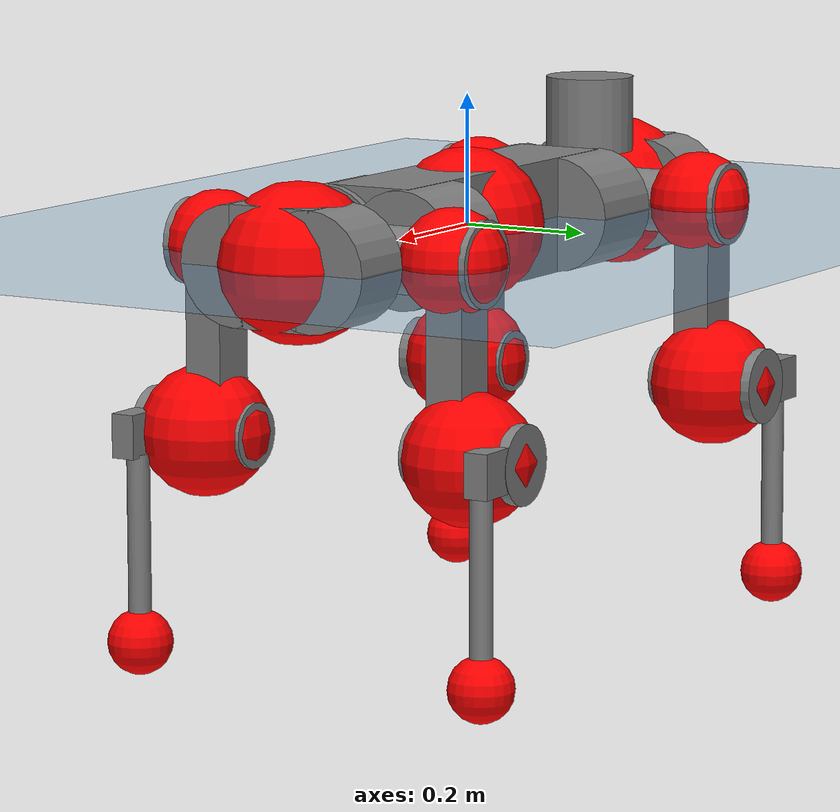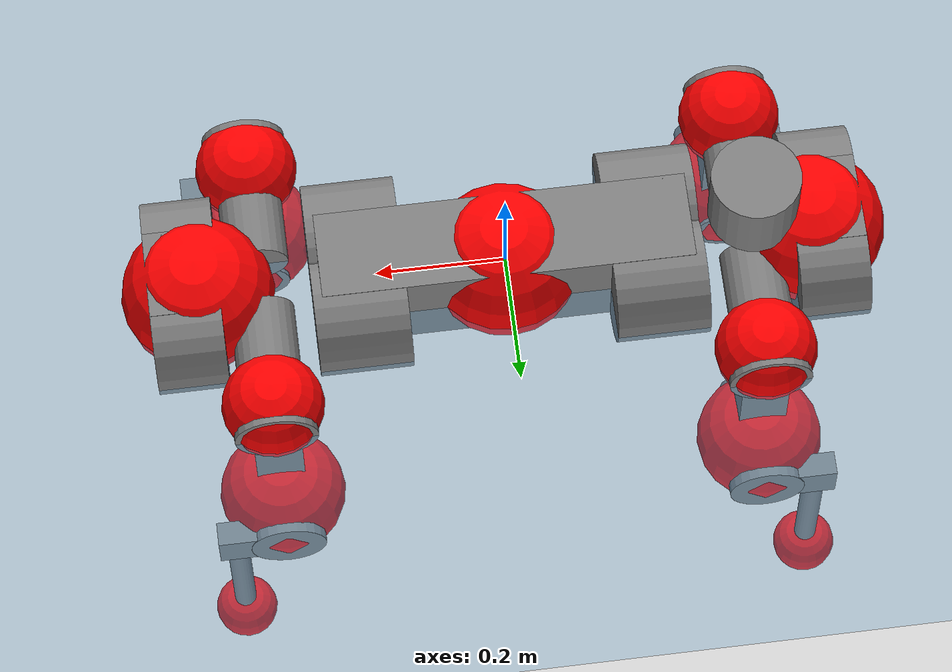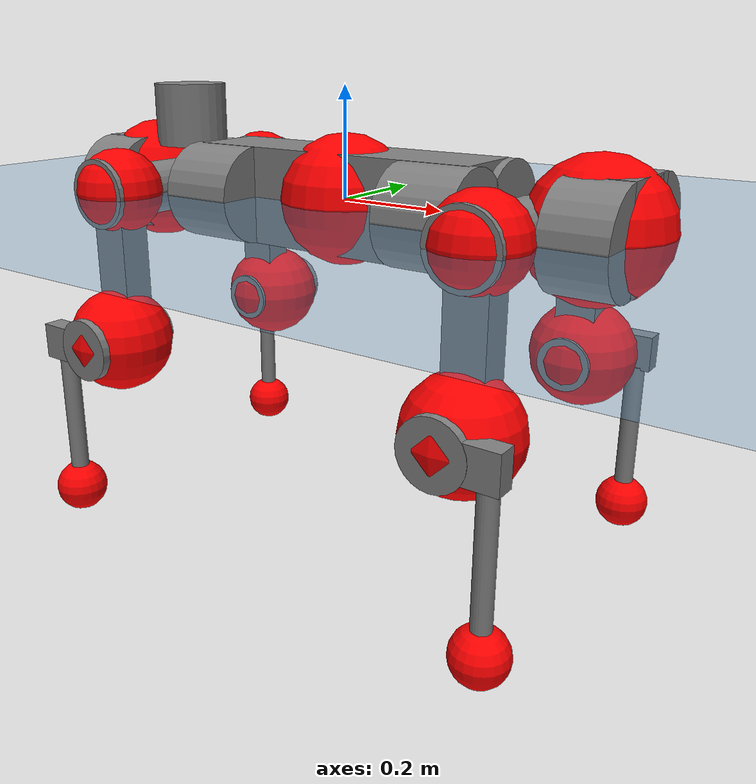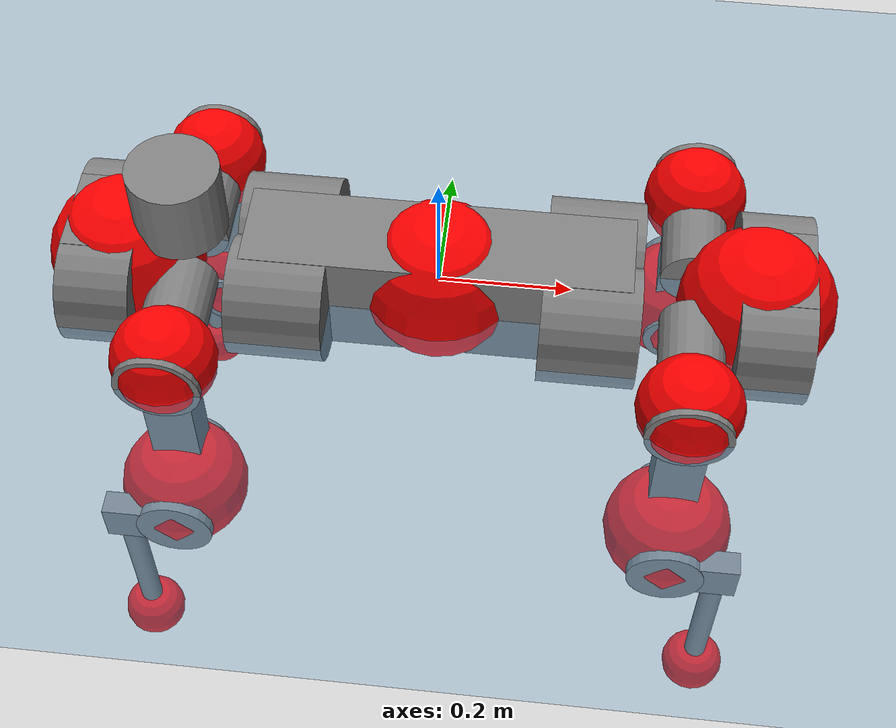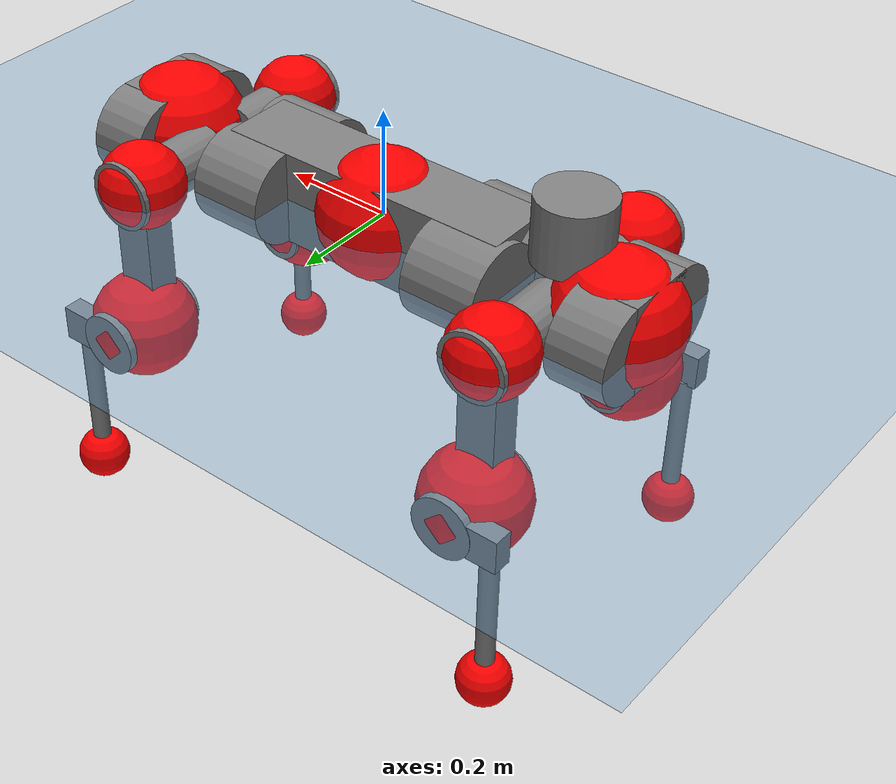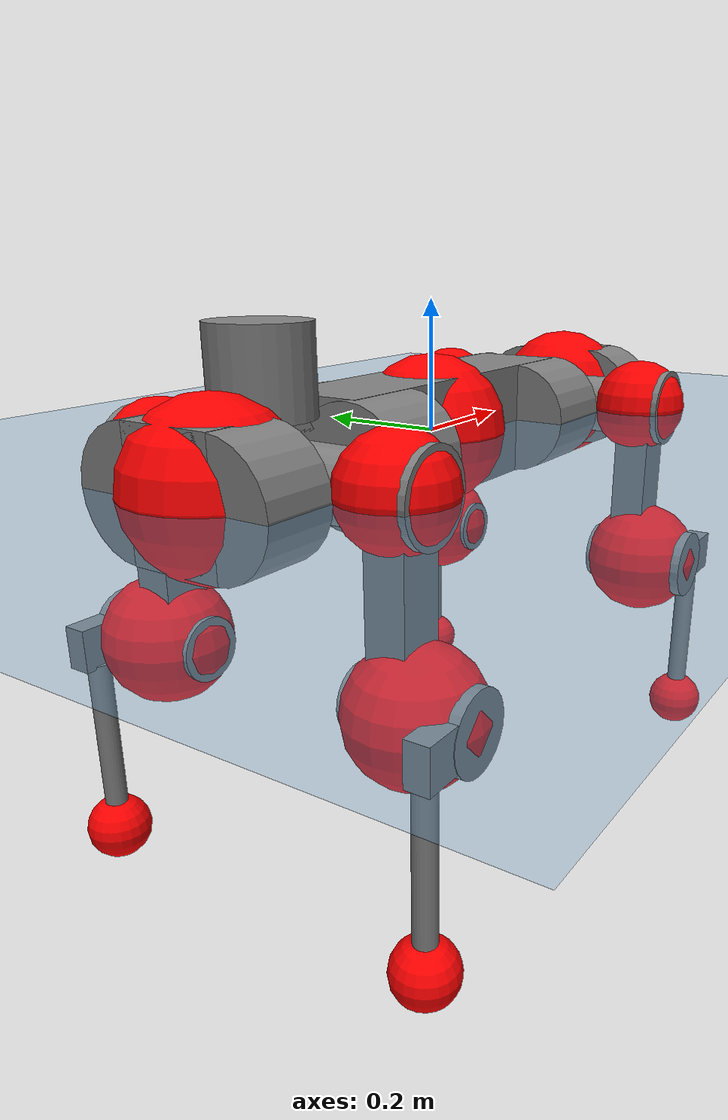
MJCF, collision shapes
<mujoco model="anymal_c">
  <compiler angle="radian" assetdir="assets" balanceinertia="true" inertiafromgeom="false"/>

  <option timestep="0.005" density="1.2" viscosity="2e-05"/>

  <size nkey="1"/>

  <visual>
    <quality shadowsize="8192"/>
    <map shadowclip="0.5"/>
  </visual>

  <default>
    <default class="/">
      <material specular="0" shininess="0.25"/>
      <geom contype="0" conaffinity="0" group="1" solref="-1000 -80"/>
      <site size="0.01 0.005 0.005" group="5"/>
      <general forcelimited="true" forcerange="-80 80" biastype="affine" gainprm="80" biasprm="0 -80 -2"/>
      <default class="anymal_c">
        <joint armature="0.01" damping="0.01" frictionloss="0.1"/>
        <default class="visual">
          <geom type="mesh" group="2"/>
          <default class="visual_zflip"/>
        </default>
        <default class="collision">
          <geom type="cylinder" group="3"/>
          <default class="foot">
            <geom size="0.03 0 0" type="sphere" condim="6" priority="1" friction="0.8 0.02 0.01" solimp="0.015 1 0.03"/>
          </default>
        </default>
      </default>
      <default class="reward_collision_sphere">
        <geom group="5" rgba="1 0 0 1"/>
      </default>
    </default>
  </default>

  <asset>
    <texture type="skybox" colorspace="auto" name="//unnamed_texture_0" builtin="gradient" rgb1="0.95 0.95 0.95" rgb2="0.95 0.95 0.95" width="100" height="600"/>
    <texture type="2d" colorspace="auto" name="texplane" builtin="checker" rgb1="0.345 0.575 0.748" rgb2="0.345 0.575 0.748" markrgb="1 1 1" width="512" height="512"/>
    <texture type="2d" colorspace="linear" name="base" file="base.png"/>
    <texture type="2d" colorspace="linear" name="top_shell" file="top_shell.png"/>
    <texture type="2d" colorspace="linear" name="bottom_shell" file="bottom_shell.png"/>
    <texture type="2d" colorspace="linear" name="remote" file="remote.png"/>
    <texture type="2d" colorspace="linear" name="hatch" file="hatch.png"/>
    <texture type="2d" colorspace="linear" name="handle" file="handle.png"/>
    <texture type="2d" colorspace="linear" name="face" file="face.png"/>
    <texture type="2d" colorspace="linear" name="battery" file="battery.png"/>
    <texture type="2d" colorspace="linear" name="lidar_cage" file="lidar_cage.png"/>
    <texture type="2d" colorspace="linear" name="depth_camera" file="depth_camera.png"/>
    <texture type="2d" colorspace="linear" name="wide_angle_camera" file="wide_angle_camera.png"/>
    <texture type="2d" colorspace="linear" name="lidar" file="lidar.png"/>
    <texture type="2d" colorspace="linear" name="drive" file="drive.png"/>
    <texture type="2d" colorspace="linear" name="hip_l" file="hip_l.png"/>
    <texture type="2d" colorspace="linear" name="shank_l" file="shank_l.png"/>
    <texture type="2d" colorspace="linear" name="foot" file="foot.png"/>
    <texture type="2d" colorspace="linear" name="thigh" file="thigh.png"/>
    <texture type="2d" colorspace="linear" name="shank_r" file="shank_r.png"/>
    <texture type="2d" colorspace="linear" name="hip_r" file="hip_r.png"/>
    <material name="MatPlane" class="/" texture="texplane" texuniform="true" texrepeat="2 2" specular="0.9" shininess="0.5"/>
    <material name="black_plastic" class="/" rgba="0.007 0.007 0.007 1"/>
    <material name="green" class="/" rgba="0.052 0.178 0.033 1"/>
    <material name="red" class="/" rgba="0.178 0.006 0.005 1"/>
    <material name="yellow" class="/" rgba="0.178 0.119 0.006 1"/>
    <material name="lwl" class="/" rgba="0.8 0.8 0.8 1"/>
    <material name="base" class="/" texture="base"/>
    <material name="top_shell" class="/" texture="top_shell"/>
    <material name="bottom_shell" class="/" texture="bottom_shell"/>
    <material name="hip_l" class="/" texture="hip_l"/>
    <material name="thigh" class="/" texture="thigh"/>
    <material name="shank_l" class="/" texture="shank_l"/>
    <material name="foot" class="/" texture="foot"/>
    <material name="hip_r" class="/" texture="hip_r"/>
    <material name="shank" class="/" texture="shank_r"/>
    <material name="hatch" class="/" texture="hatch"/>
    <material name="remote" class="/" texture="remote"/>
    <material name="handle" class="/" texture="handle"/>
    <material name="face" class="/" texture="face"/>
    <material name="depth_camera" class="/" texture="depth_camera"/>
    <material name="wide_angle_camera" class="/" texture="wide_angle_camera"/>
    <material name="battery" class="/" texture="battery"/>
    <material name="lidar_cage" class="/" texture="lidar_cage"/>
    <material name="lidar" class="/" texture="lidar"/>
    <material name="drive" class="/" texture="drive"/>
    <mesh name="base_0" class="/" file="base_0.obj"/>
    <mesh name="base_1" class="/" file="base_1.obj"/>
    <mesh name="base_2" class="/" file="base_2.obj"/>
    <mesh name="base_3" class="/" file="base_3.obj"/>
    <mesh name="base_4" class="/" file="base_4.obj"/>
    <mesh name="base_5" class="/" file="base_5.obj"/>
    <mesh name="top_shell" class="/" file="top_shell.obj"/>
    <mesh name="bottom_shell" class="/" file="bottom_shell.obj"/>
    <mesh name="remote" class="/" file="remote.obj"/>
    <mesh name="handle" class="/" file="handle.obj"/>
    <mesh name="face" class="/" file="face.obj"/>
    <mesh name="wide_angle_camera" class="/" file="wide_angle_camera.obj"/>
    <mesh name="depth_camera" class="/" file="depth_camera.obj"/>
    <mesh name="battery" class="/" file="battery.obj"/>
    <mesh name="lidar_cage" class="/" file="lidar_cage.obj"/>
    <mesh name="lidar" class="/" file="lidar.obj"/>
    <mesh name="drive" class="/" file="drive.obj"/>
    <mesh name="hip_l" class="/" file="hip_l.obj"/>
    <mesh name="thigh" class="/" file="thigh.obj"/>
    <mesh name="shank_l" class="/" file="shank_l.obj"/>
    <mesh name="foot" class="/" file="foot.obj"/>
    <mesh name="hip_r" class="/" file="hip_r.obj"/>
    <mesh name="hatch" class="/" file="hatch.obj"/>
    <mesh name="shank_r" class="/" file="shank_r.obj"/>
  </asset>

  <worldbody>
    <geom name="floor" class="/" size="100 100 0.125" type="plane" group="0" material="MatPlane"/>
    <light name="toplight_shadow" class="/" pos="0 0 5" dir="0.0990148 0.0990148 -0.990148" type="directional" ambient="0.04 0.04 0.04" diffuse="0.55 0.55 0.55" specular="0.12 0.12 0.12"/>
    <light name="toplight_fill" class="/" pos="0 0 5" dir="0.0990148 0.0990148 -0.990148" type="directional" castshadow="false" ambient="0.04 0.04 0.04" diffuse="0.3 0.3 0.3" specular="0.08 0.08 0.08"/>
    <body name="trunk" childclass="anymal_c" pos="0.00108082 0.000255474 0.000836695" quat="1 0.000163038 6.21285e-05 -0.000209235">
      <inertial pos="0.00156026 -0.000604319 0.0487417" quat="0.499597 0.498638 0.502156 0.499602" mass="18.2202" diaginertia="0.83245 0.40521 0.211155"/>
      <joint name="//unnamed_joint_0" type="free" armature="0" damping="0" frictionloss="0"/>
      <geom name="//unnamed_geom_1" class="visual" material="green" mesh="base_0"/>
      <geom name="//unnamed_geom_2" class="visual" material="yellow" mesh="base_1"/>
      <geom name="//unnamed_geom_3" class="visual" material="red" mesh="base_2"/>
      <geom name="//unnamed_geom_4" class="visual" material="black_plastic" mesh="base_3"/>
      <geom name="//unnamed_geom_5" class="visual" material="lwl" mesh="base_4"/>
      <geom name="//unnamed_geom_6" class="visual" material="base" mesh="base_5"/>
      <geom name="trunk_1" class="collision" size="0.286467 0.0691472 0.0889035" type="box"/>
      <geom name="trunk_2" class="collision" size="0.0889035 0.0716167" pos="0.229047 0.0641397 0" quat="0.707107 0 0.707107 0"/>
      <geom name="trunk_3" class="collision" size="0.0889035 0.0716167" pos="-0.229047 0.0641397 0" quat="0.707107 0 0.707107 0"/>
      <geom name="trunk_4" class="collision" size="0.0889035 0.0716167" pos="0.229047 -0.0641397 0" quat="0.707107 0 0.707107 0"/>
      <geom name="trunk_5" class="collision" size="0.0889035 0.0716167" pos="-0.229047 -0.0641397 0" quat="0.707107 0 0.707107 0"/>
      <geom name="//unnamed_geom_12" class="visual" material="top_shell" mesh="top_shell"/>
      <geom name="//unnamed_geom_13" class="visual" material="bottom_shell" mesh="bottom_shell"/>
      <geom name="//unnamed_geom_14" class="visual" material="remote" mesh="remote"/>
      <geom name="//unnamed_geom_15" class="visual" material="handle" mesh="handle"/>
      <geom name="//unnamed_geom_16" class="visual" pos="0.436506 0 0" quat="1 0 0 0" material="face" mesh="face"/>
      <geom name="trunk_6" class="collision" size="0.0543299 0.0691472 0.0889035" pos="0.494426 0 0" type="box"/>
      <geom name="//unnamed_geom_18" class="collision" size="0.0889035 0.0543299" pos="0.494426 0.0641397 0" quat="0.707107 0 0.707107 0"/>
      <geom name="//unnamed_geom_19" class="collision" size="0.0889035 0.0543299" pos="0.494426 -0.0641397 0" quat="0.707107 0 0.707107 0"/>
      <geom name="//unnamed_geom_20" class="visual" pos="0.486157 0 -0.0285786" quat="0.965926 0 0.258819 0" material="depth_camera" mesh="depth_camera"/>
      <geom name="//unnamed_geom_21" class="visual" pos="0.540235 0 0.0148814" material="wide_angle_camera" mesh="wide_angle_camera"/>
      <geom name="//unnamed_geom_22" class="visual_zflip" pos="-0.436506 0 0" quat="0 0 0 1" material="face" mesh="face"/>
      <geom name="trunk_7" class="collision" size="0.0543299 0.0691472 0.0889035" pos="-0.494426 0 0" quat="0 0 0 1" type="box"/>
      <geom name="//unnamed_geom_24" class="collision" size="0.0889035 0.0543299" pos="-0.494426 -0.0641397 0" quat="0 -0.707107 0 0.707107"/>
      <geom name="//unnamed_geom_25" class="collision" size="0.0889035 0.0543299" pos="-0.494426 0.0641397 0" quat="0 -0.707107 0 0.707107"/>
      <geom name="//unnamed_geom_26" class="visual" pos="-0.486157 0 -0.0285786" quat="0 -0.258819 0 0.965926" material="depth_camera" mesh="depth_camera"/>
      <geom name="//unnamed_geom_27" class="visual_zflip" pos="-0.540235 0 0.0148814" quat="0 0 0 1" material="wide_angle_camera" mesh="wide_angle_camera"/>
      <geom name="//unnamed_geom_28" class="visual" material="battery" mesh="battery"/>
      <geom name="//unnamed_geom_29" class="visual" pos="0 0.0682612 0.0293265" quat="0.683013 -0.183013 0.183013 0.683013" material="depth_camera" mesh="depth_camera"/>
      <geom name="//unnamed_geom_30" class="visual" pos="0 -0.0682612 0.0293265" quat="0.683013 0.183013 0.183013 -0.683013" material="depth_camera" mesh="depth_camera"/>
      <geom name="//unnamed_geom_31" class="visual" pos="-0.383325 0 0.0730648" quat="1 0 0 0" material="lidar_cage" mesh="lidar_cage"/>
      <geom name="trunk_8" class="collision" size="0.0691472 0.059269" pos="-0.383325 0 0.132709"/>
      <geom name="//unnamed_geom_33" class="visual" pos="-0.383325 -5.37489e-05 0.141358" quat="0.707107 0 0 -0.707107" material="lidar" mesh="lidar"/>
      <geom name="//unnamed_geom_34" class="visual" pos="0.315822 0.0953208 -1.34202e-09" quat="0.258819 0.965926 0 0" material="drive" mesh="drive"/>
      <geom name="//unnamed_geom_35" class="visual" pos="0.315822 -0.0953208 1.34202e-09" quat="0.258819 -0.965926 0 0" material="drive" mesh="drive"/>
      <geom name="//unnamed_geom_36" class="visual" pos="-0.315822 0.0953208 1.34202e-09" quat="0 0 0.965926 -0.258819" material="drive" mesh="drive"/>
      <geom name="//unnamed_geom_37" class="visual" pos="-0.315822 -0.0953208 -1.34202e-09" quat="0 0 -0.965926 -0.258819" material="drive" mesh="drive"/>
      <geom name="//unnamed_geom_38" class="visual" pos="0.122159 0 0.0725677" quat="1 0 0 0" material="hatch" mesh="hatch"/>
      <geom name="//unnamed_geom_39" class="reward_collision_sphere" size="0.118538"/>
      <geom name="//unnamed_geom_40" class="reward_collision_sphere" size="0.118538" pos="0.473891 0 0"/>
      <geom name="//unnamed_geom_41" class="reward_collision_sphere" size="0.118538" pos="-0.473891 0 0"/>
      <site name="imu" pos="0.262806 0.00306966 0.0478672" size="0.00987817"/>
      <camera name="track" pos="0 -1.83256 0" quat="0.707107 0.707107 0 0" mode="trackcom"/>
      <camera name="ego_camera" pos="0.473891 0 -0.0397631" quat="-0.5 -0.5 0.5 0.5"/>
      <body name="LF_HIP" pos="0.316241 0.0948795 0.000213523" quat="0.258555 0.965996 -0.000157319 0.000168065">
        <inertial pos="0.0600991 -0.0131658 -0.00852224" quat="-0.127917 0.709794 -0.135272 0.679361" mass="2.72329" diaginertia="0.00773402 0.00315809 0.00319241"/>
        <joint name="LF_HAA" pos="0 0 0" axis="0.99997 -0.00765225 -0.00132061" range="-0.70105 0.484516" armature="0.00983903" damping="0.00569238" frictionloss="0.0983129"/>
        <geom name="//unnamed_geom_42" class="visual" pos="0 -7.89447e-05 1.29666e-05" quat="0.258819 -0.965926 0 0" material="hip_l" mesh="hip_l"/>
        <geom name="//unnamed_geom_43" class="visual" pos="0.0630801 -0.0746613 -0.0436812" quat="0.183013 -0.683013 0.683013 0.183013" material="drive" mesh="drive"/>
        <geom name="//unnamed_geom_44" class="collision" size="0.0493908 0.0691472" pos="0.0630801 -0.0109585 -0.00686411" quat="-0.353553 -0.612372 0.612372 -0.353553"/>
        <body name="LF_THIGH" pos="0.0624432 -0.0669235 -0.043118" quat="0.183008 -0.683013 0.683013 0.183012">
          <inertial pos="0.0320719 0.000930778 -0.244671" quat="0.993183 -0.00525762 -0.0806439 0.0839969" mass="2.99038" diaginertia="0.0390075 0.0193787 0.00415158"/>
          <joint name="LF_HFE" pos="0 0 0" axis="0.999999 0.00116705 -0.000687955" range="-3.15552 3.1393" armature="0.0100582" damping="0.0101668" frictionloss="0.10036"/>
          <geom name="//unnamed_geom_45" class="visual" pos="0.00272198 4.2892e-06 0" quat="0.707107 0 0 -0.707107" material="thigh" mesh="thigh"/>
          <geom name="//unnamed_geom_46" class="collision" size="0.0642081 0.0395127" pos="0.0421236 0 0" quat="0.5 0.5 -0.5 -0.5"/>
          <geom name="//unnamed_geom_47" class="collision" size="0.0370431 0.0296345 0.139592" pos="0.0315927 0 -0.140477" quat="0.707107 0 0 -0.707107" type="box"/>
          <geom name="//unnamed_geom_48" class="visual" pos="0.105625 0 -0.283312" quat="1 0 0 0" material="drive" mesh="drive"/>
          <geom name="//unnamed_geom_49" class="collision" size="0.0493908 0.0691472" pos="0.0319086 0 -0.283312" quat="0.707107 0 0.707107 0"/>
          <geom name="//unnamed_geom_50" class="reward_collision_sphere" size="0.0790253" pos="0.0263273 0 0"/>
          <body name="LF_SHANK" pos="0.10584 -0.000768819 -0.283335" quat="1 -0.000146947 -0.000118037 0.000337154">
            <inertial pos="0.00589294 -0.0561815 -0.0809519" quat="0.992975 -0.115178 -0.00325857 -0.0268934" mass="0.567565" diaginertia="0.0135104 0.00599448 0.00110257"/>
            <joint name="LF_KFE" pos="0 0 0" axis="0.999992 0.00236129 0.00329332" range="-3.14973 3.13318" armature="0.00948324" damping="0.0074071" frictionloss="0.0942809"/>
            <geom name="//unnamed_geom_51" class="visual" pos="0.000887577 0.00473261 0" quat="0.707107 0 0 -0.707107" material="shank_l" mesh="shank_l"/>
            <geom name="LF_kfe_act" class="collision" size="0.059269 0.0197563" pos="0.0210618 0 0" quat="0.5 0.5 -0.5 -0.5"/>
            <geom name="//unnamed_geom_53" class="collision" size="0.0567985 0.0333388 0.0187685" pos="0.0210618 -0.0526852 0" quat="0.5 0.5 -0.5 -0.5" type="box"/>
            <geom name="//unnamed_geom_54" class="visual" pos="0.0137426 -0.0790618 -0.335969" quat="0.382683 0 0 -0.92388" material="foot" mesh="foot"/>
            <geom name="LF_calf" class="collision" size="0.0172868 0.139531" pos="0.0137428 -0.0805869 -0.167984" quat="0.707107 0 0 -0.707107"/>
            <geom name="LF_foot" class="foot" size="0.0312405" pos="0.0137428 -0.0805869 -0.313602" quat="0.707107 0 0 -0.707107"/>
            <geom name="//unnamed_geom_57" class="reward_collision_sphere" size="0.0987817" pos="-0.0526545 0 0"/>
            <geom name="//unnamed_geom_58" class="reward_collision_sphere" size="0.0493908" pos="0.0137428 -0.0805869 -0.313602"/>
            <site name="LF_foot" class="foot" pos="0.0137428 -0.0805869 -0.313602" quat="0.707107 0 0 -0.707107" size="0.00987817"/>
          </body>
        </body>
      </body>
      <body name="RF_HIP" pos="0.316751 -0.0959286 -0.000205436" quat="0.258793 -0.965933 0.000127577 6.78305e-05">
        <inertial pos="0.0588784 0.0142785 -0.00819198" quat="0.134937 0.679215 0.128053 0.709973" mass="2.68478" diaginertia="0.00771978 0.0032152 0.00326296"/>
        <joint name="RF_HAA" pos="0 0 0" axis="0.999982 0.00519129 0.0030209" stiffness="0.000676603" range="-0.49751 0.722421" armature="0.00989144" damping="0.00855476" frictionloss="0.0987399"/>
        <geom name="//unnamed_geom_59" class="visual" pos="0 7.89441e-05 1.29666e-05" quat="0.258819 0.965926 0 0" material="hip_r" mesh="hip_r"/>
        <geom name="//unnamed_geom_60" class="visual" pos="0.0630801 0.0746613 -0.0436812" quat="0.183013 0.683013 0.683013 -0.183013" material="drive" mesh="drive"/>
        <geom name="//unnamed_geom_61" class="collision" size="0.0493908 0.0691472" pos="0.0630801 0.0109585 -0.00686411" quat="-0.353553 0.612372 0.612372 0.353553"/>
        <body name="RF_THIGH" pos="0.0632151 0.0654517 -0.0423522" quat="0.183062 0.682903 0.683124 -0.182958">
          <inertial pos="0.0315953 0.000335062 -0.243956" quat="0.992927 -0.00462892 -0.0770548 0.0902097" mass="2.95977" diaginertia="0.0396433 0.0195591 0.00410156"/>
          <joint name="RF_HFE" pos="0 0 0" axis="1 -9.38908e-05 0.000615505" range="-3.14956 3.13531" armature="0.00991655" damping="0.00788533" frictionloss="0.0950653"/>
          <geom name="//unnamed_geom_62" class="visual" pos="0.00272198 4.2892e-06 0" quat="0.707107 0 0 -0.707107" material="thigh" mesh="thigh"/>
          <geom name="//unnamed_geom_63" class="collision" size="0.0642081 0.0395127" pos="0.0421236 0 0" quat="0.5 0.5 0.5 0.5"/>
          <geom name="//unnamed_geom_64" class="collision" size="0.0370431 0.0296345 0.139592" pos="0.0315927 0 -0.140477" quat="0.707107 0 0 0.707107" type="box"/>
          <geom name="//unnamed_geom_65" class="visual" pos="0.105625 0 -0.283312" quat="1 0 0 0" material="drive" mesh="drive"/>
          <geom name="//unnamed_geom_66" class="collision" size="0.0493908 0.0691472" pos="0.0319086 0 -0.283312" quat="0.707107 0 0.707107 0"/>
          <geom name="//unnamed_geom_67" class="reward_collision_sphere" size="0.0790253" pos="0.0263273 0 0"/>
          <body name="RF_SHANK" pos="0.105454 0.000423265 -0.28265" quat="1 2.29435e-05 -3.79121e-06 1.21558e-05">
            <inertial pos="0.00592609 0.0558588 -0.0798082" quat="0.99311 0.114464 -0.000991557 0.0250808" mass="0.568585" diaginertia="0.0131334 0.00595855 0.00109317"/>
            <joint name="RF_KFE" pos="0 0 0" axis="1 -0.000665544 -0.000645383" range="-3.1343 3.12366" armature="0.010026" damping="0.00600911" frictionloss="0.101737"/>
            <geom name="//unnamed_geom_68" class="visual" pos="0.000887572 -0.0047326 0" quat="0.707107 0 0 0.707107" material="shank" mesh="shank_r"/>
            <geom name="RF_kfe_act" class="collision" size="0.059269 0.0197563" pos="0.0210618 0 0" quat="0.5 0.5 0.5 0.5"/>
            <geom name="//unnamed_geom_70" class="collision" size="0.0567985 0.0333388 0.0187685" pos="0.0210618 0.0526852 0" quat="0.5 0.5 0.5 0.5" type="box"/>
            <geom name="//unnamed_geom_71" class="visual" pos="0.013743 0.0790618 -0.335969" quat="0.382683 0 0 0.92388" material="foot" mesh="foot"/>
            <geom name="RF_calf" class="collision" size="0.0172868 0.139531" pos="0.0137428 0.0805869 -0.167984" quat="0.707107 0 0 0.707107"/>
            <geom name="RF_foot" class="foot" size="0.0296797" pos="0.0137428 0.0805869 -0.313602" quat="0.707107 0 0 0.707107"/>
            <geom name="//unnamed_geom_74" class="reward_collision_sphere" size="0.0987817" pos="-0.0526545 0 0"/>
            <geom name="//unnamed_geom_75" class="reward_collision_sphere" size="0.0493908" pos="0.0137428 0.0805869 -0.313602"/>
            <site name="RF_foot" class="foot" pos="0.0137428 0.0805869 -0.313602" quat="0.707107 0 0 0.707107" size="0.00987817"/>
          </body>
        </body>
      </body>
      <body name="LH_HIP" pos="-0.315537 0.0954807 0.000945471" quat="-1.99588e-05 7.25221e-05 0.965938 -0.258775">
        <inertial pos="0.0593015 0.0144921 -0.0077903" quat="0.12964 0.678364 0.127093 0.711943" mass="2.71712" diaginertia="0.00762249 0.00319758 0.00322906"/>
        <joint name="LH_HAA" pos="0 0 0" axis="1 -0.000282662 0.000244064" range="-0.501873 0.73984" armature="0.00994764" damping="0.00957626" frictionloss="0.100248"/>
        <geom name="//unnamed_geom_76" class="visual" pos="0 7.89441e-05 1.29666e-05" quat="-0.258819 -0.965926 0 0" material="hip_r" mesh="hip_r"/>
        <geom name="//unnamed_geom_77" class="visual" pos="0.0630801 0.0746613 -0.0436812" quat="0.183013 0.683013 0.683013 -0.183013" material="drive" mesh="drive"/>
        <geom name="//unnamed_geom_78" class="collision" size="0.0493908 0.0691472" pos="0.0630801 0.0109585 -0.00686411" quat="-0.353553 0.612372 0.612372 0.353553"/>
        <body name="LH_THIGH" pos="0.0627919 0.0664889 -0.0419695" quat="0.183072 0.683045 0.682876 -0.183344">
          <inertial pos="0.0324478 -0.000156363 -0.243598" quat="0.992567 -0.00486186 -0.0821267 0.0896794" mass="2.9939" diaginertia="0.0391214 0.0194629 0.00403041"/>
          <joint name="LH_HFE" pos="0 0 0" axis="0.999988 0.00327364 0.0037398" range="-3.14835 3.13524" armature="0.00962555" damping="0.013472" frictionloss="0.0990893"/>
          <geom name="//unnamed_geom_79" class="visual" pos="0.00272198 4.2892e-06 0" quat="0.707107 0 0 -0.707107" material="thigh" mesh="thigh"/>
          <geom name="//unnamed_geom_80" class="collision" size="0.0642081 0.0395127" pos="0.0421236 0 0" quat="0.5 0.5 -0.5 -0.5"/>
          <geom name="//unnamed_geom_81" class="collision" size="0.0370431 0.0296345 0.139592" pos="0.0315927 0 -0.140477" quat="0.707107 0 0 -0.707107" type="box"/>
          <geom name="//unnamed_geom_82" class="visual" pos="0.105625 0 -0.283312" quat="1 0 0 0" material="drive" mesh="drive"/>
          <geom name="//unnamed_geom_83" class="collision" size="0.0493908 0.0691472" pos="0.0319086 0 -0.283312" quat="0.707107 0 0.707107 0"/>
          <geom name="//unnamed_geom_84" class="reward_collision_sphere" size="0.0790253" pos="0.0263273 0 0"/>
          <body name="LH_SHANK" pos="0.105607 -0.000136653 -0.283998" quat="1 1.97866e-05 -0.000100737 -5.41428e-05">
            <inertial pos="0.00608844 0.0569542 -0.0804071" quat="0.993331 0.111983 -0.00232818 0.0273383" mass="0.565198" diaginertia="0.0132759 0.00592635 0.00107007"/>
            <joint name="LH_KFE" pos="0 0 0" axis="0.999998 0.00193325 -0.000999419" range="-3.14427 3.12583" armature="0.00945175" damping="0.0125799" frictionloss="0.102843"/>
            <geom name="//unnamed_geom_85" class="visual" pos="0.000887572 -0.0047326 0" quat="-0.707107 0 0 -0.707107" material="shank" mesh="shank_r"/>
            <geom name="LH_kfe_act" class="collision" size="0.059269 0.0197563" pos="0.0210618 0 0" quat="0.5 0.5 -0.5 -0.5"/>
            <geom name="//unnamed_geom_87" class="collision" size="0.0567985 0.0333388 0.0187685" pos="0.0210618 0.0526852 0" quat="0.5 0.5 -0.5 -0.5" type="box"/>
            <geom name="//unnamed_geom_88" class="visual" pos="0.013743 0.0790618 -0.335969" quat="-0.382683 0 0 -0.92388" material="foot" mesh="foot"/>
            <geom name="LH_calf" class="collision" size="0.0172868 0.139531" pos="0.0137428 0.0805869 -0.167984" quat="0.707107 0 0 -0.707107"/>
            <geom name="LH_foot" class="foot" size="0.03074" pos="0.0137428 0.0805869 -0.313602" quat="0.707107 0 0 -0.707107"/>
            <geom name="//unnamed_geom_91" class="reward_collision_sphere" size="0.0987817" pos="-0.0526545 0 0"/>
            <geom name="//unnamed_geom_92" class="reward_collision_sphere" size="0.0493908" pos="0.0137428 0.0805869 -0.313602"/>
            <site name="LH_foot" class="foot" pos="0.0137428 0.0805869 -0.313602" quat="0.707107 0 0 -0.707107" size="0.00987817"/>
          </body>
        </body>
      </body>
      <body name="RH_HIP" pos="-0.315848 -0.0945657 0.00051451" quat="-0.000366788 -0.000199424 -0.965855 -0.259084">
        <inertial pos="0.0605296 -0.0146357 -0.0093038" quat="-0.131171 0.709772 -0.135858 0.678646" mass="2.67372" diaginertia="0.00756352 0.00317965 0.00319457"/>
        <joint name="RH_HAA" pos="0 0 0" axis="0.99998 -0.00628482 -0.000975705" range="-0.728907 0.501326" armature="0.0102982" damping="0.00901968" frictionloss="0.101288"/>
        <geom name="//unnamed_geom_93" class="visual" pos="0 -7.89447e-05 1.29666e-05" quat="-0.258819 0.965926 0 0" material="hip_l" mesh="hip_l"/>
        <geom name="//unnamed_geom_94" class="visual" pos="0.0630801 -0.0746613 -0.0436812" quat="-0.183013 0.683013 -0.683013 -0.183013" material="drive" mesh="drive"/>
        <geom name="//unnamed_geom_95" class="collision" size="0.0493908 0.0691472" pos="0.0630801 -0.0109585 -0.00686411" quat="0.353553 0.612372 -0.612372 0.353553"/>
        <body name="RH_THIGH" pos="0.062595 -0.0655864 -0.0426558" quat="-0.183 0.682996 -0.683027 -0.183036">
          <inertial pos="0.0324792 -7.6748e-05 -0.244117" quat="0.993065 -0.00501285 -0.0816786 0.0844144" mass="2.95553" diaginertia="0.0389171 0.0191031 0.0040516"/>
          <joint name="RH_HFE" pos="0 0 0" axis="1 -3.31148e-05 5.71577e-05" range="-3.13946 3.14663" armature="0.00985947" damping="0.00881778" frictionloss="0.101285"/>
          <geom name="//unnamed_geom_96" class="visual" pos="0.00272198 4.2892e-06 0" quat="0.707107 0 0 -0.707107" material="thigh" mesh="thigh"/>
          <geom name="//unnamed_geom_97" class="collision" size="0.0642081 0.0395127" pos="0.0421236 0 0" quat="0.5 0.5 0.5 0.5"/>
          <geom name="//unnamed_geom_98" class="collision" size="0.0370431 0.0296345 0.139592" pos="0.0315927 0 -0.140477" quat="0.707107 0 0 0.707107" type="box"/>
          <geom name="//unnamed_geom_99" class="visual" pos="0.105625 0 -0.283312" quat="1 0 0 0" material="drive" mesh="drive"/>
          <geom name="//unnamed_geom_100" class="collision" size="0.0493908 0.0691472" pos="0.0319086 0 -0.283312" quat="0.707107 0 0.707107 0"/>
          <geom name="//unnamed_geom_101" class="reward_collision_sphere" size="0.0790253" pos="0.0263273 0 0"/>
          <body name="RH_SHANK" pos="0.104821 0.000185948 -0.284781" quat="1 0.00015162 -1.43511e-05 3.79221e-05">
            <inertial pos="0.0063946 -0.0556554 -0.0801603" quat="0.993044 -0.115169 -0.00530325 -0.0239032" mass="0.569589" diaginertia="0.0131011 0.00597195 0.00108571"/>
            <joint name="RH_KFE" pos="0 0 0" axis="0.999977 0.00511822 0.00454319" range="-3.13422 3.13191" armature="0.00978319" damping="0.00942624" frictionloss="0.0978647"/>
            <geom name="//unnamed_geom_102" class="visual" pos="0.000887577 0.00473261 0" quat="0.707107 0 0 -0.707107" material="shank_l" mesh="shank_l"/>
            <geom name="RH_kfe_act" class="collision" size="0.059269 0.0197563" pos="0.0210618 0 0" quat="0.5 0.5 0.5 0.5"/>
            <geom name="//unnamed_geom_104" class="collision" size="0.0567985 0.0333388 0.0187685" pos="0.0210618 -0.0526852 0" quat="0.5 0.5 0.5 0.5" type="box"/>
            <geom name="//unnamed_geom_105" class="visual" pos="0.0137426 -0.0790618 -0.335969" quat="0.382683 0 0 -0.92388" material="foot" mesh="foot"/>
            <geom name="RH_calf" class="collision" size="0.0172868 0.139531" pos="0.0137428 -0.0805869 -0.167984" quat="0.707107 0 0 0.707107"/>
            <geom name="RH_foot" class="foot" size="0.0272117" pos="0.0137428 -0.0805869 -0.313602" quat="0.707107 0 0 0.707107"/>
            <geom name="//unnamed_geom_108" class="reward_collision_sphere" size="0.0987817" pos="-0.0526545 0 0"/>
            <geom name="//unnamed_geom_109" class="reward_collision_sphere" size="0.0493908" pos="0.0137428 -0.0805869 -0.313602"/>
            <site name="RH_foot" class="foot" pos="0.0137428 -0.0805869 -0.313602" quat="0.707107 0 0 0.707107" size="0.00987817"/>
          </body>
        </body>
      </body>
    </body>
  </worldbody>

  <contact>
    <pair class="/" geom1="floor" geom2="LF_foot" name="//unnamed_contact_0"/>
    <pair class="/" geom1="floor" geom2="RF_foot" name="//unnamed_contact_1"/>
    <pair class="/" geom1="floor" geom2="LH_foot" name="//unnamed_contact_2"/>
    <pair class="/" geom1="floor" geom2="RH_foot" name="//unnamed_contact_3"/>
  </contact>

  <actuator>
    <general name="LF_HAA" class="/" joint="LF_HAA" forcerange="-79.6299 79.6299" gainprm="78.8823" biasprm="0 -78.8823 -1.9006"/>
    <general name="LF_HFE" class="/" joint="LF_HFE" forcerange="-81.8392 81.8392" gainprm="78.8823" biasprm="0 -78.8823 -1.9006"/>
    <general name="LF_KFE" class="/" joint="LF_KFE" forcerange="-79.5919 79.5919" gainprm="78.8823" biasprm="0 -78.8823 -1.9006"/>
    <general name="RF_HAA" class="/" joint="RF_HAA" forcerange="-79.3607 79.3607" gainprm="78.8823" biasprm="0 -78.8823 -1.9006"/>
    <general name="RF_HFE" class="/" joint="RF_HFE" forcerange="-77.3291 77.3291" gainprm="78.8823" biasprm="0 -78.8823 -1.9006"/>
    <general name="RF_KFE" class="/" joint="RF_KFE" forcerange="-79.518 79.518" gainprm="78.8823" biasprm="0 -78.8823 -1.9006"/>
    <general name="LH_HAA" class="/" joint="LH_HAA" forcerange="-82.0674 82.0674" gainprm="78.8823" biasprm="0 -78.8823 -1.9006"/>
    <general name="LH_HFE" class="/" joint="LH_HFE" forcerange="-81.6855 81.6855" gainprm="78.8823" biasprm="0 -78.8823 -1.9006"/>
    <general name="LH_KFE" class="/" joint="LH_KFE" forcerange="-78.3854 78.3854" gainprm="78.8823" biasprm="0 -78.8823 -1.9006"/>
    <general name="RH_HAA" class="/" joint="RH_HAA" forcerange="-81.7609 81.7609" gainprm="78.8823" biasprm="0 -78.8823 -1.9006"/>
    <general name="RH_HFE" class="/" joint="RH_HFE" forcerange="-81.3229 81.3229" gainprm="78.8823" biasprm="0 -78.8823 -1.9006"/>
    <general name="RH_KFE" class="/" joint="RH_KFE" forcerange="-80.1768 80.1768" gainprm="78.8823" biasprm="0 -78.8823 -1.9006"/>
  </actuator>

  <sensor>
    <gyro site="imu" name="imu_angular_velocity"/>
    <velocimeter site="imu" name="imu_linear_velocity"/>
    <framelinvel objtype="site" objname="LF_foot" name="LF_foot_global_linear_velocity"/>
    <framelinvel objtype="site" objname="RF_foot" name="RF_foot_global_linear_velocity"/>
    <framelinvel objtype="site" objname="LH_foot" name="LH_foot_global_linear_velocity"/>
    <framelinvel objtype="site" objname="RH_foot" name="RH_foot_global_linear_velocity"/>
  </sensor>

  <keyframe>
    <key name="home" qpos="0 0 0.55 1 0 0 0 0 0.4 -0.8 0 -0.4 0.8 0 -0.4 0.8 0 0.4 -0.8"/>
  </keyframe>
</mujoco>
